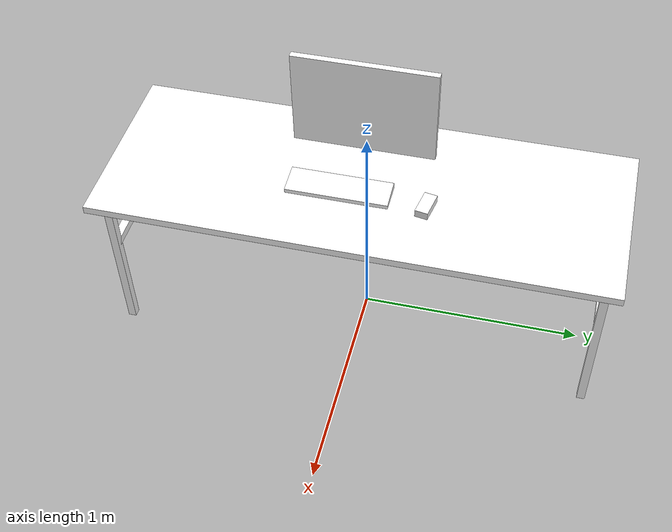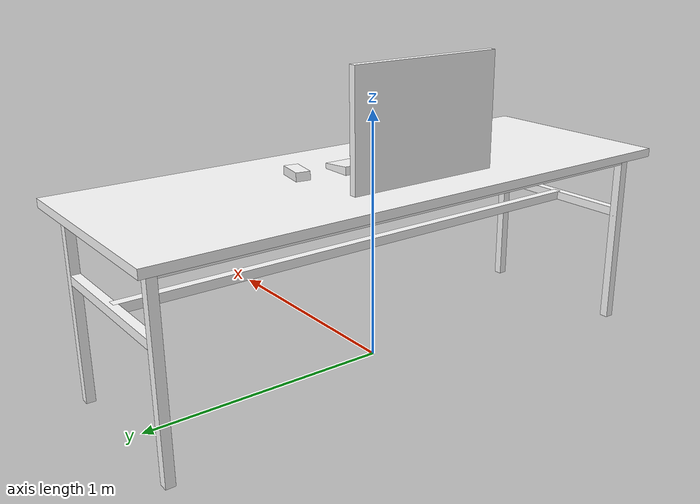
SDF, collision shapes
<?xml version="1.0" encoding="UTF-8"?>
<sdf version="1.6">
    <model name="Desk">
        <static>true</static>
        <link name="base_link">
            <visual name="visual">
                <geometry>
                    <mesh>
                        <uri>model://OfficeDesk/meshes/desk.dae</uri>
                    </mesh>
                </geometry>
                <material>
                    <diffuse>1.0 1.0 1.0</diffuse>
                    <specular>1.0 1.0 1.0</specular>
                    <pbr>
                        <metal>
                            <albedo_map>model://OfficeDesk/materials/textures/Desk_Albedo.png</albedo_map>
                            <normal_map>model://OfficeDesk/materials/textures/Desk_Normal.png</normal_map>
                            <roughness_map>model://OfficeDesk/materials/textures/Desk_Roughness.png</roughness_map>
                        </metal>
                    </pbr>
                </material>
            </visual>
            <collision name="Box001">
                <pose>0.0 0.0 0.750208 0.0 0.0 0.0</pose>
                <geometry>
                    <box>
                        <size>0.8325 2.24977 0.0336458</size>
                    </box>
                </geometry>
            </collision>
            <collision name="Box002">
                <pose>0.331174 -1.05803 0.372493 0.0 0.0 0.0</pose>
                <geometry>
                    <box>
                        <size>0.035625 0.035625 0.744987</size>
                    </box>
                </geometry>
            </collision>
            <collision name="Box003">
                <pose>0.331174 1.05803 0.372493 0.0 0.0 0.0</pose>
                <geometry>
                    <box>
                        <size>0.035625 0.035625 0.744987</size>
                    </box>
                </geometry>
            </collision>
            <collision name="Box004">
                <pose>-0.331174 1.05803 0.372493 0.0 0.0 0.0</pose>
                <geometry>
                    <box>
                        <size>0.035625 0.035625 0.744987</size>
                    </box>
                </geometry>
            </collision>
            <collision name="Box005">
                <pose>-0.331174 -1.05803 0.372493 0.0 0.0 0.0</pose>
                <geometry>
                    <box>
                        <size>0.035625 0.035625 0.744987</size>
                    </box>
                </geometry>
            </collision>
            <collision name="Box006">
                <pose>0.000344962 -1.05803 0.485212 0.0 1.5708 0.0</pose>
                <geometry>
                    <box>
                        <size>0.035625 0.035625 0.663038</size>
                    </box>
                </geometry>
            </collision>
            <collision name="Box007">
                <pose>0.000344962 1.05803 0.485212 0.0 1.5708 0.0</pose>
                <geometry>
                    <box>
                        <size>0.035625 0.035625 0.663038</size>
                    </box>
                </geometry>
            </collision>
            <collision name="Box008">
                <pose>0.0 -0.00048697 0.485212 -1.5708 1.5708 0.0</pose>
                <geometry>
                    <box>
                        <size>0.035625 0.035625 2.11509</size>
                    </box>
                </geometry>
            </collision>
            <collision name="Box009">
                <pose>0.331174 -0.000626326 0.715061 -1.5708 0.0 0.0</pose>
                <geometry>
                    <box>
                        <size>0.035625 0.035625 2.11481</size>
                    </box>
                </geometry>
            </collision>
            <collision name="Box010">
                <pose>-0.331174 -0.000626326 0.715061 -1.5708 0.0 0.0</pose>
                <geometry>
                    <box>
                        <size>0.035625 0.035625 2.11481</size>
                    </box>
                </geometry>
            </collision>
            <collision name="Box011">
                <pose>0.0726977 -0.102337 0.768498 0.0 0.0872665 0.0</pose>
                <geometry>
                    <box>
                        <size>0.129877 0.447191 0.0501799</size>
                    </box>
                </geometry>
            </collision>
            <collision name="Box012">
                <pose>-0.222452 -0.0605589 0.979005 0.0 0.0 0.0</pose>
                <geometry>
                    <box>
                        <size>0.0295176 0.63758 0.470188</size>
                    </box>
                </geometry>
            </collision>
            <collision name="Box013">
                <pose>0.0989945 0.276996 0.782739 0.0 0.0 -0.174533</pose>
                <geometry>
                    <box>
                        <size>0.116594 0.0570796 0.036897</size>
                    </box>
                </geometry>
            </collision>
        </link>
    </model>
</sdf>
